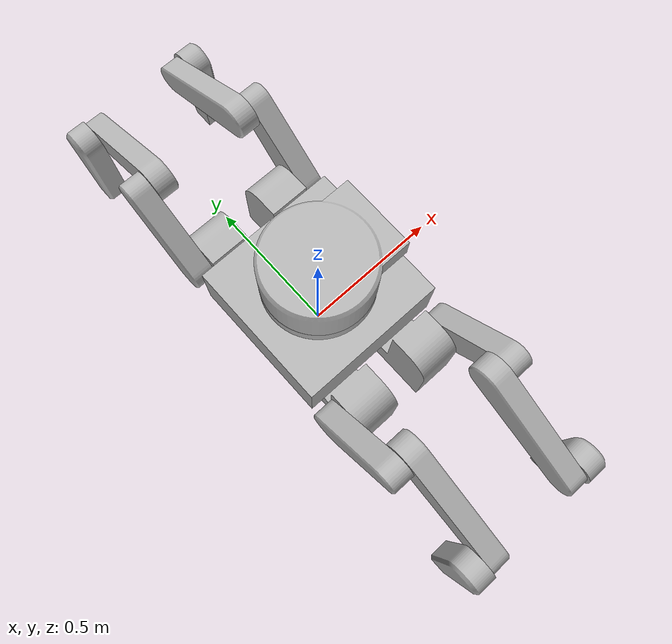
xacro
<?xml version="1.0" ?>
<robot name="Gwenbot" xmlns:xacro="http://www.ros.org/wiki/xacro">

<xacro:include filename="$(find Gwenbot_description)/urdf/materials.xacro" />
<xacro:include filename="$(find Gwenbot_description)/urdf/Gwenbot.trans" />
<xacro:include filename="$(find Gwenbot_description)/urdf/Gwenbot.gazebo" />
<link name="base_link">
  <inertial>
    <origin xyz="0.0 4.0933704664107524e-17 0.28274077295443034" rpy="0 0 0"/>
    <mass value="446.50748513498274"/>
    <inertia ixx="10.833281" iyy="10.833281" izz="17.479869" ixy="0.0" iyz="0.0" ixz="0.0"/>
  </inertial>
  <visual>
    <origin xyz="0 0 0" rpy="0 0 0"/>
    <geometry>
      <mesh filename="file://$(find Gwenbot_description)/meshes/base_link.stl" scale="0.001 0.001 0.001"/>
    </geometry>
    <material name="silver"/>
  </visual>
  <collision>
    <origin xyz="0 0 0" rpy="0 0 0"/>
    <geometry>
      <mesh filename="file://$(find Gwenbot_description)/meshes/base_link.stl" scale="0.001 0.001 0.001"/>
    </geometry>
  </collision>
</link>

<link name="leg_1_link_2_1">
  <inertial>
    <origin xyz="0.037371706663995446 0.09743794775494169 0.09744152705144904" rpy="0 0 0"/>
    <mass value="26.110950879591996"/>
    <inertia ixx="0.363269" iyy="0.193803" izz="0.193792" ixy="1.1e-05" iyz="-0.154975" ixz="1.1e-05"/>
  </inertial>
  <visual>
    <origin xyz="-0.195 -0.34 -0.24" rpy="0 0 0"/>
    <geometry>
      <mesh filename="file://$(find Gwenbot_description)/meshes/leg_1_link_2_1.stl" scale="0.001 0.001 0.001"/>
    </geometry>
    <material name="silver"/>
  </visual>
  <collision>
    <origin xyz="-0.195 -0.34 -0.24" rpy="0 0 0"/>
    <geometry>
      <mesh filename="file://$(find Gwenbot_description)/meshes/leg_1_link_2_1.stl" scale="0.001 0.001 0.001"/>
    </geometry>
  </collision>
</link>

<link name="leg_1_link_3_1">
  <inertial>
    <origin xyz="-0.03487554397484535 0.161390400385248 -0.08069565156547553" rpy="0 0 0"/>
    <mass value="29.57680033690642"/>
    <inertia ixx="0.597322" iyy="0.149521" izz="0.471799" ixy="-2e-05" iyz="0.214852" ixz="1e-05"/>
  </inertial>
  <visual>
    <origin xyz="-0.195 -0.554944 -0.454952" rpy="0 0 0"/>
    <geometry>
      <mesh filename="file://$(find Gwenbot_description)/meshes/leg_1_link_3_1.stl" scale="0.001 0.001 0.001"/>
    </geometry>
    <material name="silver"/>
  </visual>
  <collision>
    <origin xyz="-0.195 -0.554944 -0.454952" rpy="0 0 0"/>
    <geometry>
      <mesh filename="file://$(find Gwenbot_description)/meshes/leg_1_link_3_1.stl" scale="0.001 0.001 0.001"/>
    </geometry>
  </collision>
</link>

<link name="leg_1_link_4_1">
  <inertial>
    <origin xyz="0.03697762399539972 -0.01388151242503266 -0.10205645983051953" rpy="0 0 0"/>
    <mass value="19.12295749707098"/>
    <inertia ixx="0.184653" iyy="0.17484" izz="0.027319" ixy="3e-06" iyz="-0.020683" ixz="4.1e-05"/>
  </inertial>
  <visual>
    <origin xyz="-0.195 -0.904944 -0.279952" rpy="0 0 0"/>
    <geometry>
      <mesh filename="file://$(find Gwenbot_description)/meshes/leg_1_link_4_1.stl" scale="0.001 0.001 0.001"/>
    </geometry>
    <material name="silver"/>
  </visual>
  <collision>
    <origin xyz="-0.195 -0.904944 -0.279952" rpy="0 0 0"/>
    <geometry>
      <mesh filename="file://$(find Gwenbot_description)/meshes/leg_1_link_4_1.stl" scale="0.001 0.001 0.001"/>
    </geometry>
  </collision>
</link>

<link name="leg_2_link_2_1">
  <inertial>
    <origin xyz="-0.03737170666399556 0.0974379477549418 0.09744152705144915" rpy="0 0 0"/>
    <mass value="26.110950879591993"/>
    <inertia ixx="0.363269" iyy="0.193803" izz="0.193792" ixy="-1.1e-05" iyz="-0.154975" ixz="-1.1e-05"/>
  </inertial>
  <visual>
    <origin xyz="0.195 -0.34 -0.24" rpy="0 0 0"/>
    <geometry>
      <mesh filename="file://$(find Gwenbot_description)/meshes/leg_2_link_2_1.stl" scale="0.001 0.001 0.001"/>
    </geometry>
    <material name="silver"/>
  </visual>
  <collision>
    <origin xyz="0.195 -0.34 -0.24" rpy="0 0 0"/>
    <geometry>
      <mesh filename="file://$(find Gwenbot_description)/meshes/leg_2_link_2_1.stl" scale="0.001 0.001 0.001"/>
    </geometry>
  </collision>
</link>

<link name="leg_2_link_3_1">
  <inertial>
    <origin xyz="0.03487554397484535 0.1613904003852481 -0.08069565156547548" rpy="0 0 0"/>
    <mass value="29.576800336906405"/>
    <inertia ixx="0.597322" iyy="0.149521" izz="0.471799" ixy="2e-05" iyz="0.214852" ixz="-1e-05"/>
  </inertial>
  <visual>
    <origin xyz="0.195 -0.554944 -0.454952" rpy="0 0 0"/>
    <geometry>
      <mesh filename="file://$(find Gwenbot_description)/meshes/leg_2_link_3_1.stl" scale="0.001 0.001 0.001"/>
    </geometry>
    <material name="silver"/>
  </visual>
  <collision>
    <origin xyz="0.195 -0.554944 -0.454952" rpy="0 0 0"/>
    <geometry>
      <mesh filename="file://$(find Gwenbot_description)/meshes/leg_2_link_3_1.stl" scale="0.001 0.001 0.001"/>
    </geometry>
  </collision>
</link>

<link name="leg_2_link_4_1">
  <inertial>
    <origin xyz="-0.03697762399539967 -0.01388151242503266 -0.1020564598305197" rpy="0 0 0"/>
    <mass value="19.12295749707096"/>
    <inertia ixx="0.184653" iyy="0.17484" izz="0.027319" ixy="-3e-06" iyz="-0.020683" ixz="-4.1e-05"/>
  </inertial>
  <visual>
    <origin xyz="0.195 -0.904944 -0.279952" rpy="0 0 0"/>
    <geometry>
      <mesh filename="file://$(find Gwenbot_description)/meshes/leg_2_link_4_1.stl" scale="0.001 0.001 0.001"/>
    </geometry>
    <material name="silver"/>
  </visual>
  <collision>
    <origin xyz="0.195 -0.904944 -0.279952" rpy="0 0 0"/>
    <geometry>
      <mesh filename="file://$(find Gwenbot_description)/meshes/leg_2_link_4_1.stl" scale="0.001 0.001 0.001"/>
    </geometry>
  </collision>
</link>

<link name="leg_3_link_2_1">
  <inertial>
    <origin xyz="0.0373717066639955 -0.0974379477549418 0.09744152705144904" rpy="0 0 0"/>
    <mass value="26.11095087959199"/>
    <inertia ixx="0.363269" iyy="0.193803" izz="0.193792" ixy="-1.1e-05" iyz="0.154975" ixz="1.1e-05"/>
  </inertial>
  <visual>
    <origin xyz="-0.195 0.34 -0.24" rpy="0 0 0"/>
    <geometry>
      <mesh filename="file://$(find Gwenbot_description)/meshes/leg_3_link_2_1.stl" scale="0.001 0.001 0.001"/>
    </geometry>
    <material name="silver"/>
  </visual>
  <collision>
    <origin xyz="-0.195 0.34 -0.24" rpy="0 0 0"/>
    <geometry>
      <mesh filename="file://$(find Gwenbot_description)/meshes/leg_3_link_2_1.stl" scale="0.001 0.001 0.001"/>
    </geometry>
  </collision>
</link>

<link name="leg_3_link_3_1">
  <inertial>
    <origin xyz="-0.03487554397484538 -0.16139040038524788 -0.08069565156547553" rpy="0 0 0"/>
    <mass value="29.576800336906427"/>
    <inertia ixx="0.597322" iyy="0.149521" izz="0.471799" ixy="2e-05" iyz="-0.214852" ixz="1e-05"/>
  </inertial>
  <visual>
    <origin xyz="-0.195 0.554944 -0.454952" rpy="0 0 0"/>
    <geometry>
      <mesh filename="file://$(find Gwenbot_description)/meshes/leg_3_link_3_1.stl" scale="0.001 0.001 0.001"/>
    </geometry>
    <material name="silver"/>
  </visual>
  <collision>
    <origin xyz="-0.195 0.554944 -0.454952" rpy="0 0 0"/>
    <geometry>
      <mesh filename="file://$(find Gwenbot_description)/meshes/leg_3_link_3_1.stl" scale="0.001 0.001 0.001"/>
    </geometry>
  </collision>
</link>

<link name="leg_3_link_4_1">
  <inertial>
    <origin xyz="0.03697762399539975 0.01388151242503255 -0.10205645983051956" rpy="0 0 0"/>
    <mass value="19.122957497070978"/>
    <inertia ixx="0.184653" iyy="0.17484" izz="0.027319" ixy="-3e-06" iyz="0.020683" ixz="4.1e-05"/>
  </inertial>
  <visual>
    <origin xyz="-0.195 0.904944 -0.279952" rpy="0 0 0"/>
    <geometry>
      <mesh filename="file://$(find Gwenbot_description)/meshes/leg_3_link_4_1.stl" scale="0.001 0.001 0.001"/>
    </geometry>
    <material name="silver"/>
  </visual>
  <collision>
    <origin xyz="-0.195 0.904944 -0.279952" rpy="0 0 0"/>
    <geometry>
      <mesh filename="file://$(find Gwenbot_description)/meshes/leg_3_link_4_1.stl" scale="0.001 0.001 0.001"/>
    </geometry>
  </collision>
</link>

<link name="leg_4_link_2_1">
  <inertial>
    <origin xyz="-0.03737170666399553 -0.09743794775494186 0.09744152705144915" rpy="0 0 0"/>
    <mass value="26.110950879591996"/>
    <inertia ixx="0.363269" iyy="0.193803" izz="0.193792" ixy="1.1e-05" iyz="0.154975" ixz="-1.1e-05"/>
  </inertial>
  <visual>
    <origin xyz="0.195 0.34 -0.24" rpy="0 0 0"/>
    <geometry>
      <mesh filename="file://$(find Gwenbot_description)/meshes/leg_4_link_2_1.stl" scale="0.001 0.001 0.001"/>
    </geometry>
    <material name="silver"/>
  </visual>
  <collision>
    <origin xyz="0.195 0.34 -0.24" rpy="0 0 0"/>
    <geometry>
      <mesh filename="file://$(find Gwenbot_description)/meshes/leg_4_link_2_1.stl" scale="0.001 0.001 0.001"/>
    </geometry>
  </collision>
</link>

<link name="leg_4_link_3_1">
  <inertial>
    <origin xyz="0.03487554397484535 -0.1613904003852481 -0.08069565156547548" rpy="0 0 0"/>
    <mass value="29.576800336906405"/>
    <inertia ixx="0.597322" iyy="0.149521" izz="0.471799" ixy="-2e-05" iyz="-0.214852" ixz="-1e-05"/>
  </inertial>
  <visual>
    <origin xyz="0.195 0.554944 -0.454952" rpy="0 0 0"/>
    <geometry>
      <mesh filename="file://$(find Gwenbot_description)/meshes/leg_4_link_3_1.stl" scale="0.001 0.001 0.001"/>
    </geometry>
    <material name="silver"/>
  </visual>
  <collision>
    <origin xyz="0.195 0.554944 -0.454952" rpy="0 0 0"/>
    <geometry>
      <mesh filename="file://$(find Gwenbot_description)/meshes/leg_4_link_3_1.stl" scale="0.001 0.001 0.001"/>
    </geometry>
  </collision>
</link>

<link name="leg_4_link_4_1">
  <inertial>
    <origin xyz="-0.03697762399539972 0.01388151242503266 -0.10205645983051972" rpy="0 0 0"/>
    <mass value="19.122957497070963"/>
    <inertia ixx="0.184653" iyy="0.17484" izz="0.027319" ixy="3e-06" iyz="0.020683" ixz="-4.1e-05"/>
  </inertial>
  <visual>
    <origin xyz="0.195 0.904944 -0.279952" rpy="0 0 0"/>
    <geometry>
      <mesh filename="file://$(find Gwenbot_description)/meshes/leg_4_link_4_1.stl" scale="0.001 0.001 0.001"/>
    </geometry>
    <material name="silver"/>
  </visual>
  <collision>
    <origin xyz="0.195 0.904944 -0.279952" rpy="0 0 0"/>
    <geometry>
      <mesh filename="file://$(find Gwenbot_description)/meshes/leg_4_link_4_1.stl" scale="0.001 0.001 0.001"/>
    </geometry>
  </collision>
</link>

<link name="leg_1_link_1_1">
  <inertial>
    <origin xyz="2.7755575615628914e-17 0.16061611503732448 0.00393919575366905" rpy="0 0 0"/>
    <mass value="66.2235956819387"/>
    <inertia ixx="1.043665" iyy="0.491909" izz="0.765529" ixy="0.0" iyz="-0.215809" ixz="0.0"/>
  </inertial>
  <visual>
    <origin xyz="-0.125 -0.125 -0.15" rpy="0 0 0"/>
    <geometry>
      <mesh filename="file://$(find Gwenbot_description)/meshes/leg_1_link_1_1.stl" scale="0.001 0.001 0.001"/>
    </geometry>
    <material name="silver"/>
  </visual>
  <collision>
    <origin xyz="-0.125 -0.125 -0.15" rpy="0 0 0"/>
    <geometry>
      <mesh filename="file://$(find Gwenbot_description)/meshes/leg_1_link_1_1.stl" scale="0.001 0.001 0.001"/>
    </geometry>
  </collision>
</link>

<link name="leg_2_link_1_1">
  <inertial>
    <origin xyz="-2.7755575615628914e-17 0.16061611503732443 0.00393919575366905" rpy="0 0 0"/>
    <mass value="66.22359568193872"/>
    <inertia ixx="1.043665" iyy="0.491909" izz="0.765529" ixy="-0.0" iyz="-0.215809" ixz="-0.0"/>
  </inertial>
  <visual>
    <origin xyz="0.125 -0.125 -0.15" rpy="0 0 0"/>
    <geometry>
      <mesh filename="file://$(find Gwenbot_description)/meshes/leg_2_link_1_1.stl" scale="0.001 0.001 0.001"/>
    </geometry>
    <material name="silver"/>
  </visual>
  <collision>
    <origin xyz="0.125 -0.125 -0.15" rpy="0 0 0"/>
    <geometry>
      <mesh filename="file://$(find Gwenbot_description)/meshes/leg_2_link_1_1.stl" scale="0.001 0.001 0.001"/>
    </geometry>
  </collision>
</link>

<link name="leg_3_link_1_1">
  <inertial>
    <origin xyz="0.0 -0.16061611503732443 0.00393919575366905" rpy="0 0 0"/>
    <mass value="66.2235956819387"/>
    <inertia ixx="1.043665" iyy="0.491909" izz="0.765529" ixy="-0.0" iyz="0.215809" ixz="0.0"/>
  </inertial>
  <visual>
    <origin xyz="-0.125 0.125 -0.15" rpy="0 0 0"/>
    <geometry>
      <mesh filename="file://$(find Gwenbot_description)/meshes/leg_3_link_1_1.stl" scale="0.001 0.001 0.001"/>
    </geometry>
    <material name="silver"/>
  </visual>
  <collision>
    <origin xyz="-0.125 0.125 -0.15" rpy="0 0 0"/>
    <geometry>
      <mesh filename="file://$(find Gwenbot_description)/meshes/leg_3_link_1_1.stl" scale="0.001 0.001 0.001"/>
    </geometry>
  </collision>
</link>

<link name="leg_4_link_1_1">
  <inertial>
    <origin xyz="-2.7755575615628914e-17 -0.16061611503732448 0.003939195753669078" rpy="0 0 0"/>
    <mass value="66.2235956819387"/>
    <inertia ixx="1.043665" iyy="0.491909" izz="0.765529" ixy="0.0" iyz="0.215809" ixz="-0.0"/>
  </inertial>
  <visual>
    <origin xyz="0.125 0.125 -0.15" rpy="0 0 0"/>
    <geometry>
      <mesh filename="file://$(find Gwenbot_description)/meshes/leg_4_link_1_1.stl" scale="0.001 0.001 0.001"/>
    </geometry>
    <material name="silver"/>
  </visual>
  <collision>
    <origin xyz="0.125 0.125 -0.15" rpy="0 0 0"/>
    <geometry>
      <mesh filename="file://$(find Gwenbot_description)/meshes/leg_4_link_1_1.stl" scale="0.001 0.001 0.001"/>
    </geometry>
  </collision>
</link>

<link name="camera_joint_1">
  <inertial>
    <origin xyz="0.016260409832481927 -3.495815603183003e-17 0.0760138865857079" rpy="0 0 0"/>
    <mass value="130.70773462841575"/>
    <inertia ixx="1.275998" iyy="1.586045" izz="2.399393" ixy="-0.0" iyz="-0.0" ixz="-0.029726"/>
  </inertial>
  <visual>
    <origin xyz="-0.0 -0.0 -0.425" rpy="0 0 0"/>
    <geometry>
      <mesh filename="file://$(find Gwenbot_description)/meshes/camera_joint_1.stl" scale="0.001 0.001 0.001"/>
    </geometry>
    <material name="silver"/>
  </visual>
  <collision>
    <origin xyz="-0.0 -0.0 -0.425" rpy="0 0 0"/>
    <geometry>
      <mesh filename="file://$(find Gwenbot_description)/meshes/camera_joint_1.stl" scale="0.001 0.001 0.001"/>
    </geometry>
  </collision>
</link>

<joint name="leg_1_joint_1" type="revolute">
  <origin xyz="0.125 0.125 0.15" rpy="0 0 0"/>
  <parent link="base_link"/>
  <child link="leg_1_link_1_1"/>
  <axis xyz="0.0 0.0 -1.0"/>
  <limit upper="0.174533" lower="-0.174533" effort="100" velocity="100"/>
</joint>

<joint name="leg_1_joint_2" type="revolute">
  <origin xyz="0.07 0.215 0.09" rpy="0 0 0"/>
  <parent link="leg_1_link_1_1"/>
  <child link="leg_1_link_2_1"/>
  <axis xyz="-1.0 0.0 0.0"/>
  <limit upper="0.872665" lower="-0.872665" effort="100" velocity="100"/>
</joint>

<joint name="leg_1_joint_3" type="revolute">
  <origin xyz="0.0 0.214944 0.214952" rpy="0 0 0"/>
  <parent link="leg_1_link_2_1"/>
  <child link="leg_1_link_3_1"/>
  <axis xyz="1.0 0.0 0.0"/>
  <limit upper="3.577925" lower="-1.134464" effort="100" velocity="100"/>
</joint>

<joint name="leg_1_joint_4" type="continuous">
  <origin xyz="0.0 0.35 -0.175" rpy="0 0 0"/>
  <parent link="leg_1_link_3_1"/>
  <child link="leg_1_link_4_1"/>
  <axis xyz="-1.0 0.0 0.0"/>
</joint>

<joint name="leg_2_joint_1" type="revolute">
  <origin xyz="-0.125 0.125 0.15" rpy="0 0 0"/>
  <parent link="base_link"/>
  <child link="leg_2_link_1_1"/>
  <axis xyz="0.0 0.0 -1.0"/>
  <limit upper="0.174533" lower="-0.174533" effort="100" velocity="100"/>
</joint>

<joint name="leg_2_joint_2" type="revolute">
  <origin xyz="-0.07 0.215 0.09" rpy="0 0 0"/>
  <parent link="leg_2_link_1_1"/>
  <child link="leg_2_link_2_1"/>
  <axis xyz="-1.0 0.0 0.0"/>
  <limit upper="0.872665" lower="-0.872665" effort="100" velocity="100"/>
</joint>

<joint name="leg_2_joint_3" type="revolute">
  <origin xyz="0.0 0.214944 0.214952" rpy="0 0 0"/>
  <parent link="leg_2_link_2_1"/>
  <child link="leg_2_link_3_1"/>
  <axis xyz="1.0 0.0 0.0"/>
  <limit upper="3.577925" lower="-1.134464" effort="100" velocity="100"/>
</joint>

<joint name="leg_2_joint_4" type="continuous">
  <origin xyz="0.0 0.35 -0.175" rpy="0 0 0"/>
  <parent link="leg_2_link_3_1"/>
  <child link="leg_2_link_4_1"/>
  <axis xyz="-1.0 0.0 0.0"/>
</joint>

<joint name="leg_3_joint_1" type="revolute">
  <origin xyz="0.125 -0.125 0.15" rpy="0 0 0"/>
  <parent link="base_link"/>
  <child link="leg_3_link_1_1"/>
  <axis xyz="0.0 0.0 1.0"/>
  <limit upper="0.174533" lower="-0.174533" effort="100" velocity="100"/>
</joint>

<joint name="leg_3_joint_2" type="revolute">
  <origin xyz="0.07 -0.215 0.09" rpy="0 0 0"/>
  <parent link="leg_3_link_1_1"/>
  <child link="leg_3_link_2_1"/>
  <axis xyz="1.0 0.0 0.0"/>
  <limit upper="0.872665" lower="-0.872665" effort="100" velocity="100"/>
</joint>

<joint name="leg_3_joint_3" type="revolute">
  <origin xyz="0.0 -0.214944 0.214952" rpy="0 0 0"/>
  <parent link="leg_3_link_2_1"/>
  <child link="leg_3_link_3_1"/>
  <axis xyz="-1.0 0.0 0.0"/>
  <limit upper="3.577925" lower="-1.134464" effort="100" velocity="100"/>
</joint>

<joint name="leg_3_joint_4" type="continuous">
  <origin xyz="0.0 -0.35 -0.175" rpy="0 0 0"/>
  <parent link="leg_3_link_3_1"/>
  <child link="leg_3_link_4_1"/>
  <axis xyz="1.0 0.0 0.0"/>
</joint>

<joint name="leg_4_joint_1" type="revolute">
  <origin xyz="-0.125 -0.125 0.15" rpy="0 0 0"/>
  <parent link="base_link"/>
  <child link="leg_4_link_1_1"/>
  <axis xyz="0.0 0.0 1.0"/>
  <limit upper="0.174533" lower="-0.174533" effort="100" velocity="100"/>
</joint>

<joint name="leg_4_joint_2" type="revolute">
  <origin xyz="-0.07 -0.215 0.09" rpy="0 0 0"/>
  <parent link="leg_4_link_1_1"/>
  <child link="leg_4_link_2_1"/>
  <axis xyz="1.0 0.0 0.0"/>
  <limit upper="0.872665" lower="-0.872665" effort="100" velocity="100"/>
</joint>

<joint name="leg_4_joint_3" type="revolute">
  <origin xyz="0.0 -0.214944 0.214952" rpy="0 0 0"/>
  <parent link="leg_4_link_2_1"/>
  <child link="leg_4_link_3_1"/>
  <axis xyz="-1.0 0.0 0.0"/>
  <limit upper="3.577925" lower="-1.134464" effort="100" velocity="100"/>
</joint>

<joint name="leg_4_joint_4" type="continuous">
  <origin xyz="0.0 -0.35 -0.175" rpy="0 0 0"/>
  <parent link="leg_4_link_3_1"/>
  <child link="leg_4_link_4_1"/>
  <axis xyz="1.0 0.0 0.0"/>
</joint>

<joint name="camera_joint" type="fixed">
  <origin xyz="0.0 0.0 0.425" rpy="0 0 0"/>
  <parent link="base_link"/>
  <child link="camera_joint_1"/>
</joint>

</robot>

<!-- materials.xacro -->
<robot name="Gwenbot" xmlns:xacro="http://www.ros.org/wiki/xacro" >

<material name="silver">
  <color rgba="0.700 0.700 0.700 1.000"/>
</material>

</robot>

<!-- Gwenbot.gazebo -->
<robot name="Gwenbot" xmlns:xacro="http://www.ros.org/wiki/xacro" >

<xacro:property name="body_color" value="Gazebo/Silver" />

<gazebo>
  <plugin name="control" filename="libgazebo_ros_control.so"/>
</gazebo>
<gazebo reference="base_link">
  <material>${body_color}</material>
  <mu1>0.2</mu1>
  <mu2>0.2</mu2>
  <self_collide>true</self_collide>
  <gravity>true</gravity>
</gazebo>

<gazebo reference="leg_1_link_2_1">
  <material>${body_color}</material>
  <mu1>0.2</mu1>
  <mu2>0.2</mu2>
  <self_collide>true</self_collide>
</gazebo>

<gazebo reference="leg_1_link_3_1">
  <material>${body_color}</material>
  <mu1>0.2</mu1>
  <mu2>0.2</mu2>
  <self_collide>true</self_collide>
</gazebo>

<gazebo reference="leg_1_link_4_1">
  <material>${body_color}</material>
  <mu1>0.2</mu1>
  <mu2>0.2</mu2>
  <self_collide>true</self_collide>
</gazebo>

<gazebo reference="leg_2_link_2_1">
  <material>${body_color}</material>
  <mu1>0.2</mu1>
  <mu2>0.2</mu2>
  <self_collide>true</self_collide>
</gazebo>

<gazebo reference="leg_2_link_3_1">
  <material>${body_color}</material>
  <mu1>0.2</mu1>
  <mu2>0.2</mu2>
  <self_collide>true</self_collide>
</gazebo>

<gazebo reference="leg_2_link_4_1">
  <material>${body_color}</material>
  <mu1>0.2</mu1>
  <mu2>0.2</mu2>
  <self_collide>true</self_collide>
</gazebo>

<gazebo reference="leg_3_link_2_1">
  <material>${body_color}</material>
  <mu1>0.2</mu1>
  <mu2>0.2</mu2>
  <self_collide>true</self_collide>
</gazebo>

<gazebo reference="leg_3_link_3_1">
  <material>${body_color}</material>
  <mu1>0.2</mu1>
  <mu2>0.2</mu2>
  <self_collide>true</self_collide>
</gazebo>

<gazebo reference="leg_3_link_4_1">
  <material>${body_color}</material>
  <mu1>0.2</mu1>
  <mu2>0.2</mu2>
  <self_collide>true</self_collide>
</gazebo>

<gazebo reference="leg_4_link_2_1">
  <material>${body_color}</material>
  <mu1>0.2</mu1>
  <mu2>0.2</mu2>
  <self_collide>true</self_collide>
</gazebo>

<gazebo reference="leg_4_link_3_1">
  <material>${body_color}</material>
  <mu1>0.2</mu1>
  <mu2>0.2</mu2>
  <self_collide>true</self_collide>
</gazebo>

<gazebo reference="leg_4_link_4_1">
  <material>${body_color}</material>
  <mu1>0.2</mu1>
  <mu2>0.2</mu2>
  <self_collide>true</self_collide>
</gazebo>

<gazebo reference="leg_1_link_1_1">
  <material>${body_color}</material>
  <mu1>0.2</mu1>
  <mu2>0.2</mu2>
  <self_collide>true</self_collide>
</gazebo>

<gazebo reference="leg_2_link_1_1">
  <material>${body_color}</material>
  <mu1>0.2</mu1>
  <mu2>0.2</mu2>
  <self_collide>true</self_collide>
</gazebo>

<gazebo reference="leg_3_link_1_1">
  <material>${body_color}</material>
  <mu1>0.2</mu1>
  <mu2>0.2</mu2>
  <self_collide>true</self_collide>
</gazebo>

<gazebo reference="leg_4_link_1_1">
  <material>${body_color}</material>
  <mu1>0.2</mu1>
  <mu2>0.2</mu2>
  <self_collide>true</self_collide>
</gazebo>

<gazebo reference="camera_joint_1">
  <material>${body_color}</material>
  <mu1>0.2</mu1>
  <mu2>0.2</mu2>
  <self_collide>true</self_collide>
</gazebo>

</robot>
